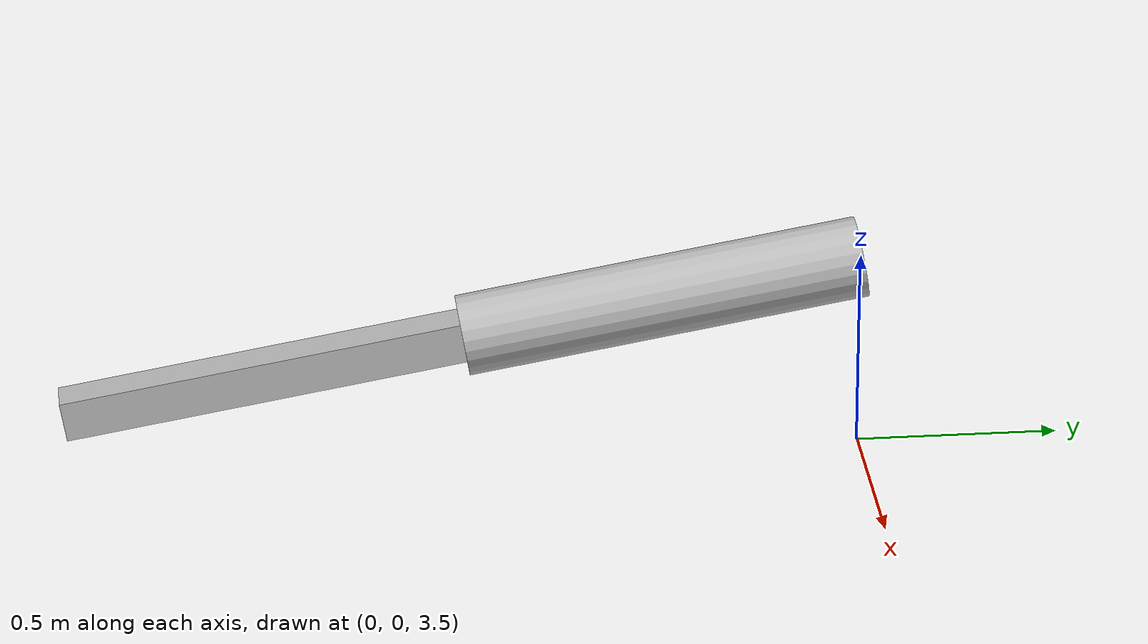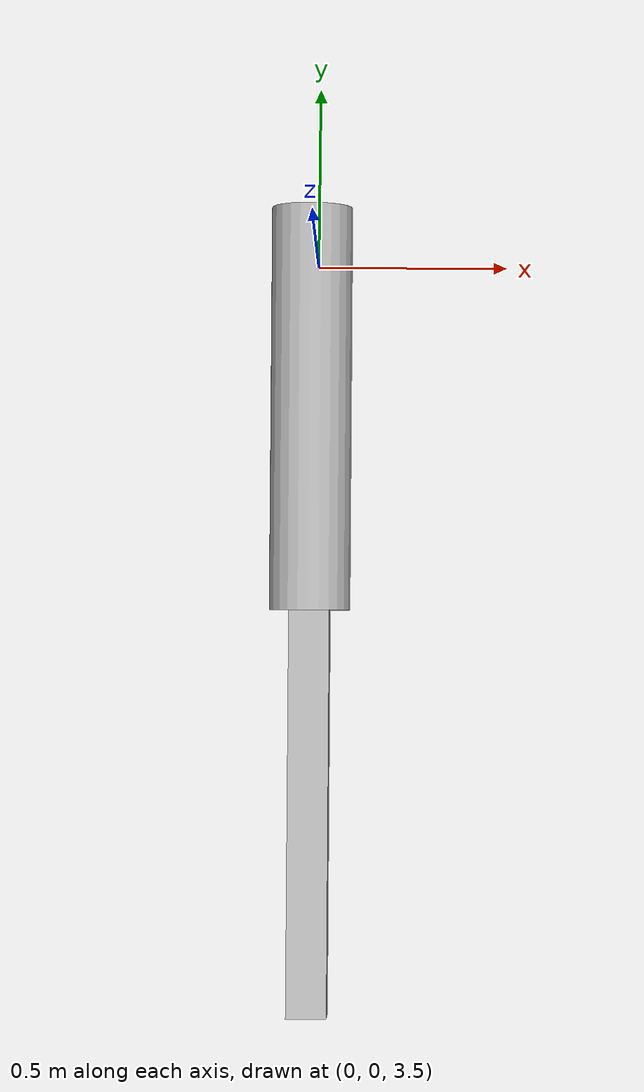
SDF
<?xml version="1.0" ?>
<sdf version="1.3">
    <world name="default">
    <gravity>0 0 -9.81</gravity>
    <!-- A global light source -->
    <include>
      <uri>model://sun</uri>
    </include>

    <!-- A ground plane at z=0 -->
    <include>
      <uri>model://ground_plane</uri>
    </include>

    <!-- Double pendulum model -->
    <model name="double_pendulum">
      <!-- pose specified as: x y z roll pitch yaw (angles in radians) -->
      <!-- this is the model pose, which defines the pin location for the upper link -->
      <!-- the upper link is 4 meters above the ground plane -->
      <!-- the initial angle of the upper link is -1.4 radians -->
      <pose>0 0 4 -1.4 0 0</pose>
      <!-- start declaration of upper link with length 1 meter -->
      <link name="upper_link">
        <!-- start at the model origin -->
        <pose>0 0 0 0 0 0</pose>
        <inertial>
          <!-- this pose specifies the c.g. location of the upper link -->
          <pose>0 0 -0.5 0 0 0</pose>
          <mass>10.0</mass>
          <inertia>
            <!-- it would be nice if these parameters could be linked but that's something for the future -->
            <!-- see https://bitbucket.org/osrf/gazebo/issue/210/incorporate-xacro-into-sdf -->
            <ixx>1.0</ixx><ixy>0.0</ixy><ixz>0.0</ixz>
                          <iyy>1.0</iyy><iyz>0.0</iyz>
                                        <izz>1.0</izz>
          </inertia>
        </inertial>
        <!-- this describes what is displayed on screen -->
        <visual name="visual_cylinder">
          <pose>0 0 -0.5 0 0 0</pose>
          <geometry>
            <cylinder>
              <radius>0.1</radius>
              <length>1.0</length>
            </cylinder>
          </geometry>
          <material>
            <script>Gazebo/Green</script>
          </material>
        </visual>
        <!-- this describes the collision geometry -->
        <collision name="collision_cylinder">
          <pose>0 0 -0.5 0 0 0</pose>
          <geometry>
            <cylinder>
              <radius>0.1</radius>
              <length>1.0</length>
            </cylinder>
          </geometry>
        </collision>
      </link>
      <!-- now define the lower link of length 1 meter attached to the end of the upper_link -->
      <link name="lower_link">
        <pose>0 0 -1.0 0 0 0</pose>
        <inertial>
          <pose>0 0 -0.5 0 0 0</pose>
          <mass>10.0</mass>
          <inertia>
            <ixx>1.0</ixx><ixy>0.0</ixy><ixz>0.0</ixz>
                          <iyy>1.0</iyy><iyz>0.0</iyz>
                                        <izz>1.0</izz>
          </inertia>
        </inertial>
        <visual name="visual_box">
          <pose>0 0 -0.5 0 0 0</pose>
          <geometry>
            <box>
              <size>0.1 0.1 1.0</size>
            </box>
          </geometry>
          <material>
            <script>Gazebo/Red</script>
          </material>
          <cast_shadows>1</cast_shadows>
        </visual>
        <collision name="collision_box">
          <pose>0 0 -0.5 0 0 0</pose>
          <geometry>
            <box>
              <size>0.100000 0.100000 1.000000</size>
            </box>
          </geometry>
        </collision>
      </link>
      <joint name="world_to_upper_pin_joint" type="revolute">
        <parent>world</parent>
        <child>upper_link</child>
        <pose>0 0 0 0 0 0</pose>
        <axis>
          <!-- spins about x axis -->
          <xyz>1 0 0</xyz>
        </axis>
      </joint>
      <joint name="upper_to_lower_pin_joint" type="revolute">
        <parent>upper_link</parent>
        <child>lower_link</child>
        <!-- this pose specifies location revolute joint, relative to the child link -->
        <pose>0 0 0 0 0 0</pose>
        <axis>
          <xyz>1 0 0</xyz>
        </axis>
      </joint>
    </model>
  </world>
</sdf>
